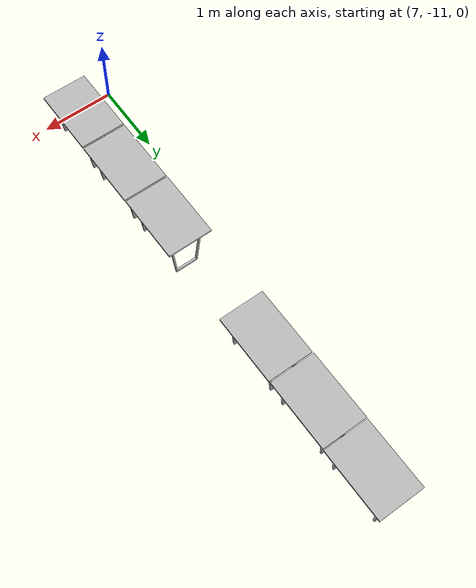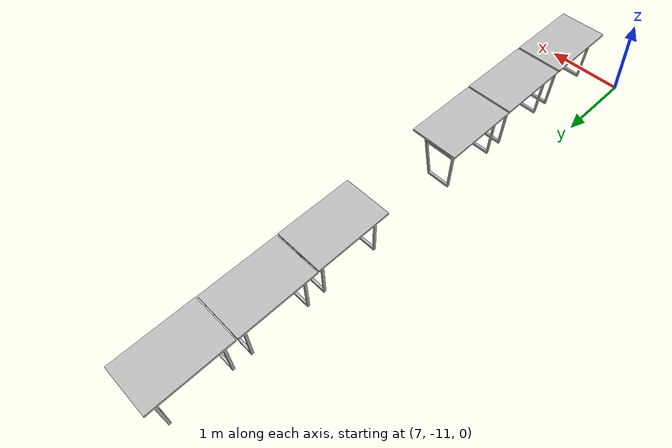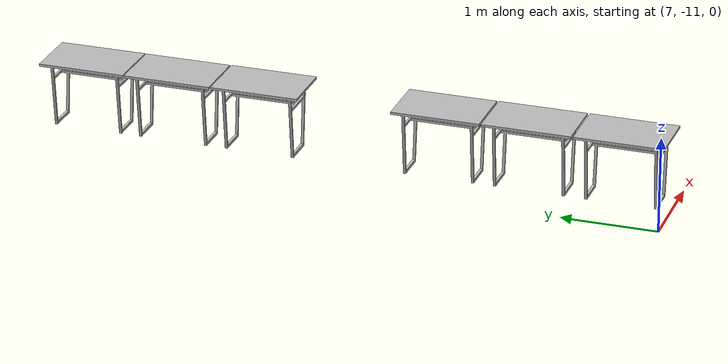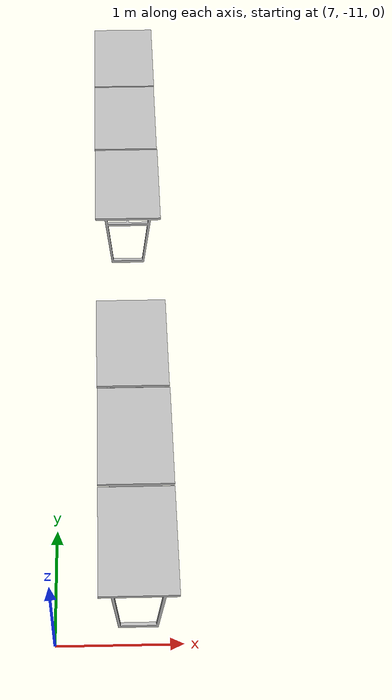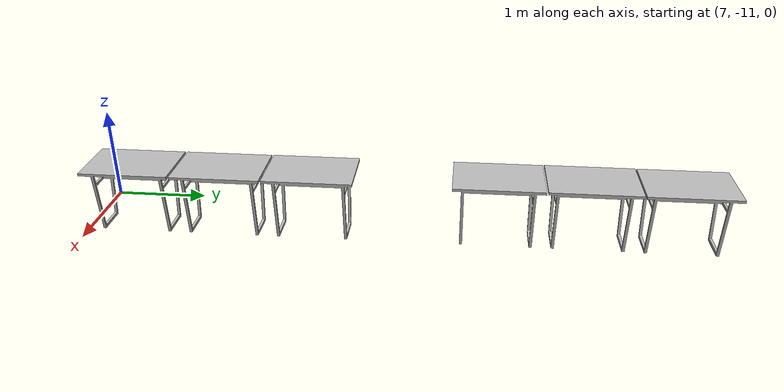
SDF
<sdf version="1.7">
 <world name="sim_world">
  <physics name="10ms" type="ode">
   <max_step_size>0.01</max_step_size>
   <real_time_factor>1.0</real_time_factor>
  </physics>
  <plugin filename="libgz-sim-physics-system.so" name="gz::sim::systems::Physics"/>
  <plugin filename="libgz-sim-user-commands-system.so" name="gz::sim::systems::UserCommands"/>
  <plugin filename="libgz-sim-scene-broadcaster-system.so" name="gz::sim::systems::SceneBroadcaster"/>
  <plugin filename="libdoor.so" name="door"/>
  <plugin filename="liblift.so" name="lift"/>
  <scene><ambient>1 1 1</ambient><background>0.8 0.8 0.8</background><grid>false</grid></scene>
  <light type="directional" name="sun">
   <pose>0 0 10 0 0 0</pose>
   <diffuse>1 1 1 1</diffuse>
   <specular>0.2 0.2 0.2 1</specular>
   <attenuation>
    <range>1000</range>
    <constant>0.09</constant>
    <linear>0.001</linear>
    <quadratic>0.001</quadratic>
   </attenuation>
   <direction>-0.5 0.1 -0.9</direction>
  </light>
  <include>
   <name>OpenRobotics/FoodCourtTable1</name>
   <uri>model://FoodCourtTable1</uri>
   <pose>7.638448208027225 -4.775442805381185 0.0 0 0 3.1416</pose>
   <static>True</static>
  </include>
  <include>
   <name>OpenRobotics/FoodCourtTable1_2</name>
   <uri>model://FoodCourtTable1</uri>
   <pose>7.634647736251055 -5.717359731380535 0.0 0 0 3.1416</pose>
   <static>True</static>
  </include>
  <include>
   <name>OpenRobotics/FoodCourtTable1_3</name>
   <uri>model://FoodCourtTable1</uri>
   <pose>7.6395983508015926 -6.661476930513458 0.0 0 0 3.1416</pose>
   <static>True</static>
  </include>
  <include>
   <name>OpenRobotics/FoodCourtTable1_4</name>
   <uri>model://FoodCourtTable1</uri>
   <pose>7.644648977767293 -8.584365630633071 0.0 0 0 3.1416</pose>
   <static>True</static>
  </include>
  <include>
   <name>OpenRobotics/FoodCourtTable1_5</name>
   <uri>model://FoodCourtTable1</uri>
   <pose>7.647999393675233 -10.483101332490968 0.0 0 0 -3.1416</pose>
   <static>True</static>
  </include>
  <include>
   <name>OpenRobotics/FoodCourtTable1_6</name>
   <uri>model://FoodCourtTable1</uri>
   <pose>7.647999393675233 -9.53203327050426 0.0 0 0 3.1416</pose>
   <static>True</static>
  </include>
  <include><name>depot_L1</name><uri>model://depot_L1</uri></include>
  <rmf_charger_waypoints name="charger_waypoints">
   <rmf_vertex name="deliveryRobotCharger1" x="28.2650087111177" y="-5.6303989363968405" level="L1"/>
   <rmf_vertex name="deliveryRobotCharger2" x="28.29596255361046" y="-6.807245025612636" level="L1"/>
  </rmf_charger_waypoints>
 </world>
</sdf>

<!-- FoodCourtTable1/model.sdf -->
<sdf version="1.6">
  <model name="FoodCourtTable1">
   <static>true</static>
    <link name="body">
      <pose>0 0 0 0 0 0</pose>

      <visual name="visual">
        <geometry>
          <mesh>
            <uri>model://FoodCourtTable1/meshes/FoodCourtTable1.obj</uri>
          </mesh>
        </geometry>
      </visual>

      <collision name="collision">
        <geometry>
          <mesh>
            <uri>model://FoodCourtTable1/meshes/FoodCourtTable1_Col.obj</uri>
          </mesh>
        </geometry>
      </collision>

    </link>
  </model>
</sdf>

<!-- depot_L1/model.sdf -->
<sdf version="1.7">
  <model name="depot_L1">
    <static>true</static>
  </model>
</sdf>
